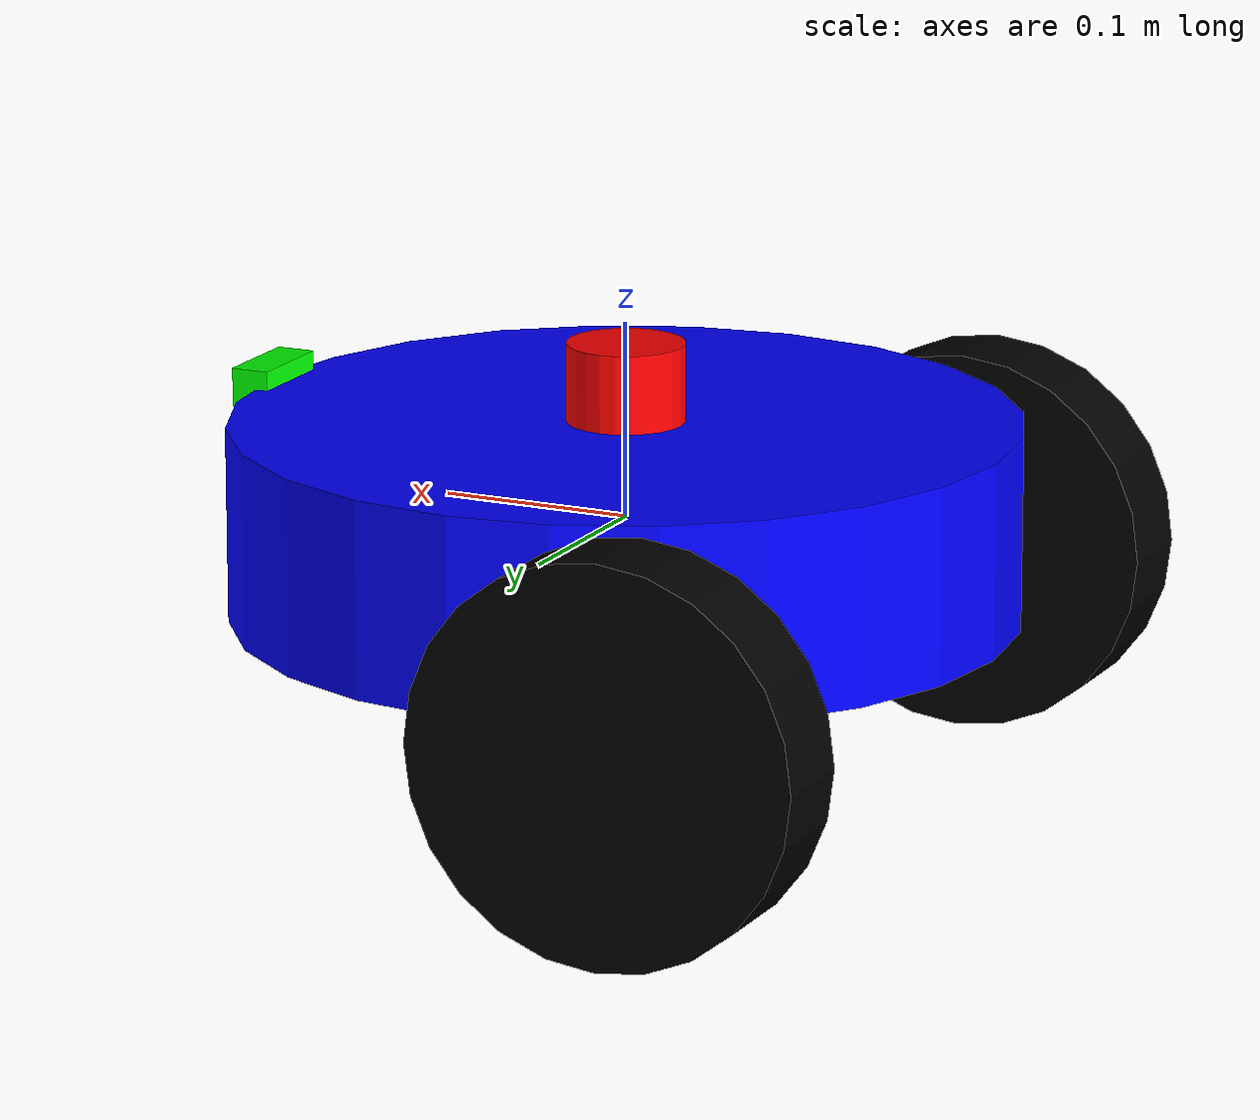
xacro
<?xml version="1.0"?>
<robot xmlns:xacro="http://www.ros.org/wiki/xacro" name="three_wheeled_robot">

  <!-- Robot Body -->
  <link name="base_link">
    <visual>
      <geometry>
        <cylinder length="0.1" radius="0.2"/>
      </geometry>
      <material name="blue">
        <color rgba="0 0 1 1"/>
      </material>
    </visual>
    <collision>
      <geometry>
        <cylinder length="0.1" radius="0.2"/>
      </geometry>
    </collision>
    <inertial>
      <mass value="5"/>
      <inertia ixx="0.1" ixy="0.0" ixz="0.0" iyy="0.1" iyz="0.0" izz="0.1"/>
    </inertial>
  </link>

  <!-- Caster Wheel -->
  <link name="caster_wheel">
    <visual>
      <geometry>
        <sphere radius="0.05"/>
      </geometry>
      <material name="black">
        <color rgba="0 0 0 1"/>
      </material>
    </visual>
    <collision>
      <geometry>
        <sphere radius="0.05"/>
      </geometry>
    </collision>
    <inertial>
      <mass value="1"/>
      <inertia ixx="0.01" ixy="0.0" ixz="0.0" iyy="0.01" iyz="0.0" izz="0.01"/>
    </inertial>
  </link>

  <joint name="caster_joint" type="fixed">
    <parent link="base_link"/>
    <child link="caster_wheel"/>
    <origin xyz="0.15 0 -0.05"/>
  </joint>

  <!-- Left Wheel -->
  <link name="left_wheel">
    <visual>
      <geometry>
        <cylinder length="0.05" radius="0.1"/>
      </geometry>
      <material name="black"/>
    </visual>
    <collision>
      <geometry>
        <cylinder length="0.05" radius="0.1"/>
      </geometry>
    </collision>
    <inertial>
      <mass value="1"/>
      <inertia ixx="0.01" ixy="0.0" ixz="0.0" iyy="0.01" iyz="0.0" izz="0.01"/>
    </inertial>
  </link>

  <joint name="left_wheel_joint" type="continuous">
    <parent link="base_link"/>
    <child link="left_wheel"/>
    <origin xyz="-0.1 0.22 -0.05" rpy="-1.5707 0 0"/>
    <axis xyz="0 0 1"/>
  </joint>

  <!-- Right Wheel -->
  <link name="right_wheel">
    <visual>
      <geometry>
        <cylinder length="0.05" radius="0.1"/>
      </geometry>
      <material name="black"/>
    </visual>
    <collision>
      <geometry>
        <cylinder length="0.05" radius="0.1"/>
      </geometry>
    </collision>
    <inertial>
      <mass value="1"/>
      <inertia ixx="0.01" ixy="0.0" ixz="0.0" iyy="0.01" iyz="0.0" izz="0.01"/>
    </inertial>
  </link>

  <joint name="right_wheel_joint" type="continuous">
    <parent link="base_link"/>
    <child link="right_wheel"/>
    <origin xyz="-0.1 -0.22 -0.05" rpy="-1.5707 0 0"/>
    <axis xyz="0 0 1"/>
  </joint>

  <!-- Diff Drive Plugin (Gazebo Harmonic) -->
  <gazebo>
    <plugin filename="gz-sim-diff-drive-system" name="gz::sim::systems::DiffDrive">
      <left_joint>left_wheel_joint</left_joint>
      <right_joint>right_wheel_joint</right_joint>
      <wheel_separation>0.44</wheel_separation>
      <wheel_radius>0.1</wheel_radius>
      <max_linear_acceleration>1.0</max_linear_acceleration>
      <topic>cmd_vel</topic>
      <odom_topic>odom</odom_topic>
      <tf_topic>tf</tf_topic>
      <frame_id>odom</frame_id>
      <child_frame_id>base_link</child_frame_id>
    </plugin>
  </gazebo>

  <!-- Lidar Sensor Link -->
  <link name="lidar_link">
    <visual>
      <geometry>
        <cylinder length="0.04" radius="0.03"/>
      </geometry>
      <material name="red">
        <color rgba="1 0 0 1"/>
      </material>
    </visual>
    <collision>
      <geometry>
        <cylinder length="0.04" radius="0.03"/>
      </geometry>
    </collision>
    <inertial>
      <mass value="0.1"/>
      <inertia ixx="0.001" ixy="0.0" ixz="0.0" iyy="0.001" iyz="0.0" izz="0.001"/>
    </inertial>
  </link>

  <joint name="lidar_joint" type="fixed">
    <parent link="base_link"/>
    <child link="lidar_link"/>
    <origin xyz="0 0 0.07" rpy="0 0 0"/>
  </joint>

  <!-- Camera Link -->
  <link name="camera_link">
    <visual>
      <geometry>
        <box size="0.02 0.05 0.02"/>
      </geometry>
      <material name="green">
        <color rgba="0 1 0 1"/>
      </material>
    </visual>
    <collision>
      <geometry>
        <box size="0.02 0.05 0.02"/>
      </geometry>
    </collision>
    <inertial>
      <mass value="0.05"/>
      <inertia ixx="0.0001" ixy="0.0" ixz="0.0" iyy="0.0001" iyz="0.0" izz="0.0001"/>
    </inertial>
  </link>

  <joint name="camera_joint" type="fixed">
    <parent link="base_link"/>
    <child link="camera_link"/>
    <origin xyz="0.2 0 0.05" rpy="0 0 0"/>
  </joint>

  <!-- Lidar Sensor Plugin -->
  <gazebo reference="lidar_link">
    <sensor name="lidar" type="gpu_lidar">
      <topic>lidar</topic>
      <update_rate>10</update_rate>
      <lidar>
        <scan>
          <horizontal>
            <samples>360</samples>
            <resolution>1</resolution>
            <min_angle>-3.14159</min_angle>
            <max_angle>3.14159</max_angle>
          </horizontal>
        </scan>
        <range>
          <min>0.1</min>
          <max>10.0</max>
          <resolution>0.01</resolution>
        </range>
      </lidar>
      <always_on>1</always_on>
      <visualize>true</visualize>
    </sensor>
  </gazebo>

  <!-- IMU Sensor Plugin -->
  <gazebo reference="base_link">
    <sensor name="imu_sensor" type="imu">
      <topic>imu</topic>
      <update_rate>100</update_rate>
      <always_on>1</always_on>
      <imu>
        <angular_velocity>
          <x>
            <noise type="gaussian">
              <mean>0.0</mean>
              <stddev>0.0002</stddev>
            </noise>
          </x>
          <y>
            <noise type="gaussian">
              <mean>0.0</mean>
              <stddev>0.0002</stddev>
            </noise>
          </y>
          <z>
            <noise type="gaussian">
              <mean>0.0</mean>
              <stddev>0.0002</stddev>
            </noise>
          </z>
        </angular_velocity>
        <linear_acceleration>
          <x>
            <noise type="gaussian">
              <mean>0.0</mean>
              <stddev>0.017</stddev>
            </noise>
          </x>
          <y>
            <noise type="gaussian">
              <mean>0.0</mean>
              <stddev>0.017</stddev>
            </noise>
          </y>
          <z>
            <noise type="gaussian">
              <mean>0.0</mean>
              <stddev>0.017</stddev>
            </noise>
          </z>
        </linear_acceleration>
      </imu>
    </sensor>
  </gazebo>

  <!-- Camera Sensor Plugin -->
  <gazebo reference="camera_link">
    <sensor name="camera" type="camera">
      <topic>camera</topic>
      <update_rate>30</update_rate>
      <camera>
        <horizontal_fov>1.047</horizontal_fov>
        <image>
          <width>640</width>
          <height>480</height>
          <format>R8G8B8</format>
        </image>
        <clip>
          <near>0.1</near>
          <far>100</far>
        </clip>
      </camera>
      <always_on>1</always_on>
      <visualize>true</visualize>
    </sensor>
  </gazebo>

</robot>
